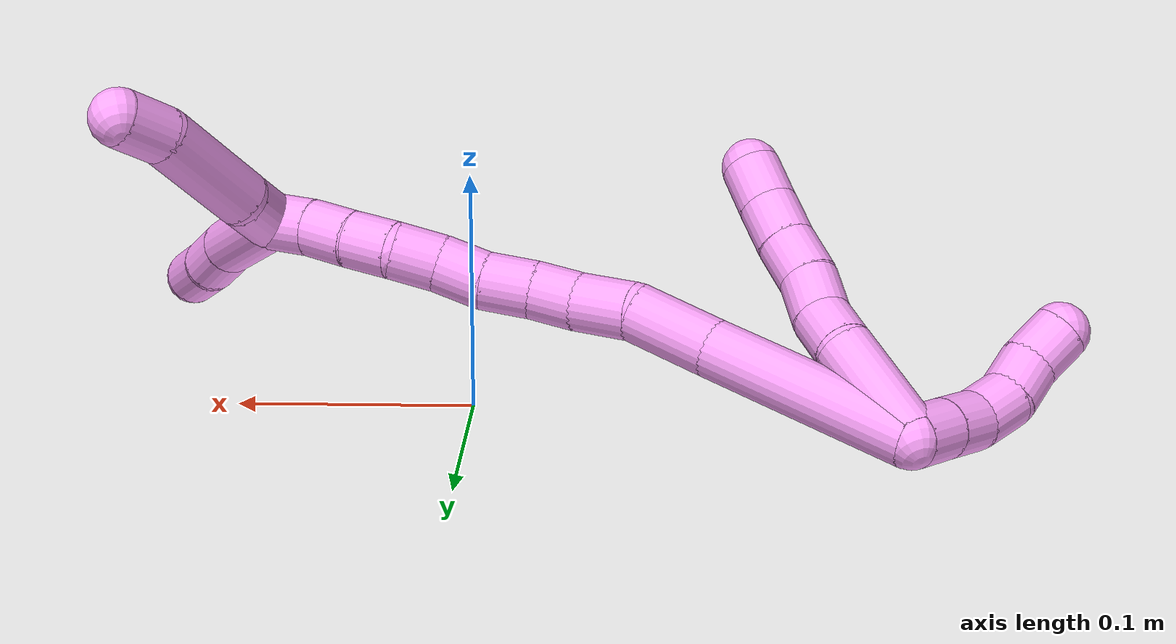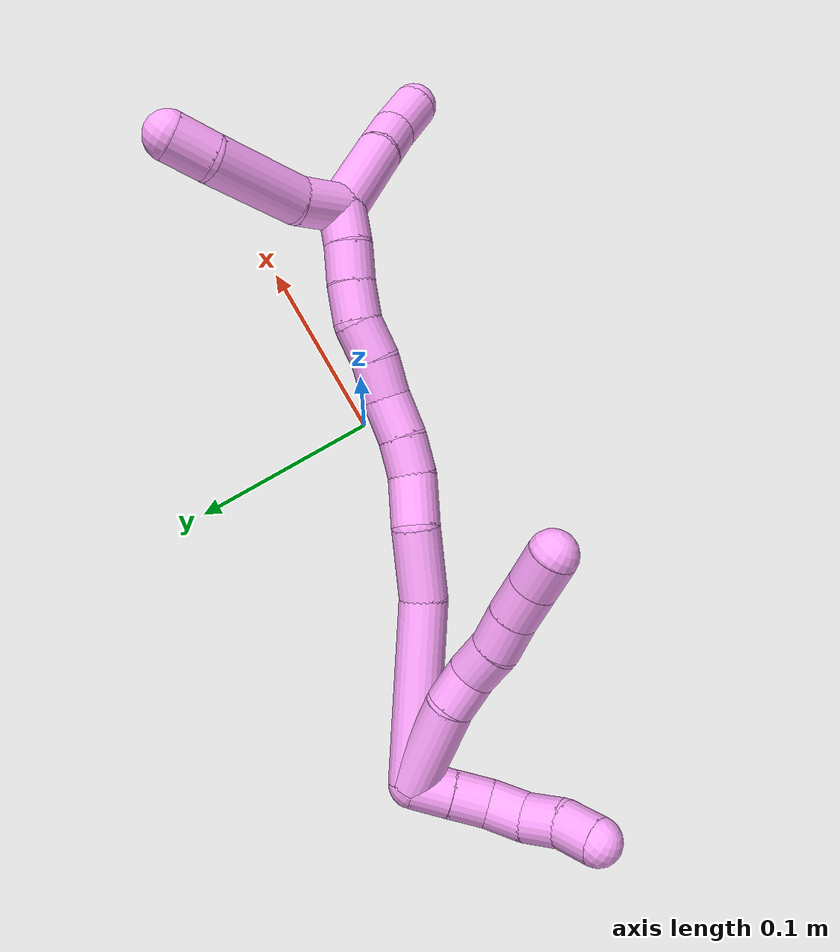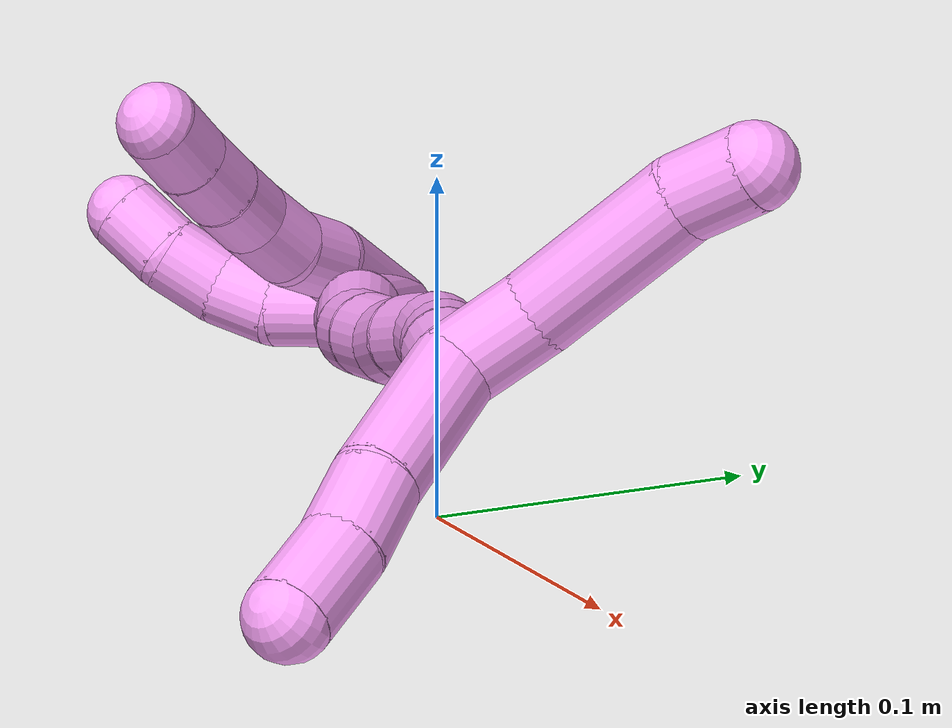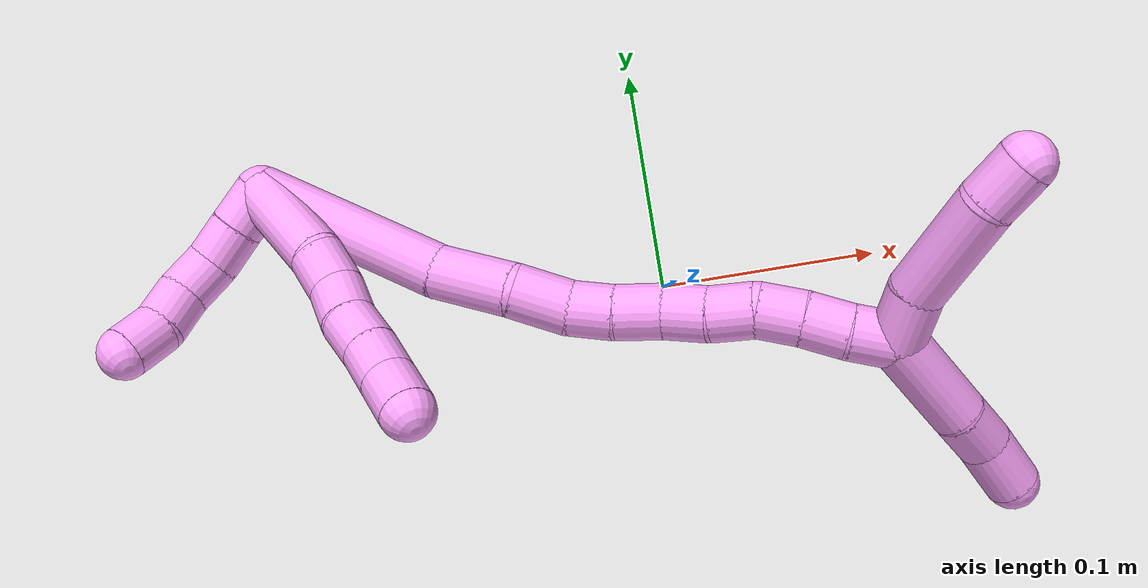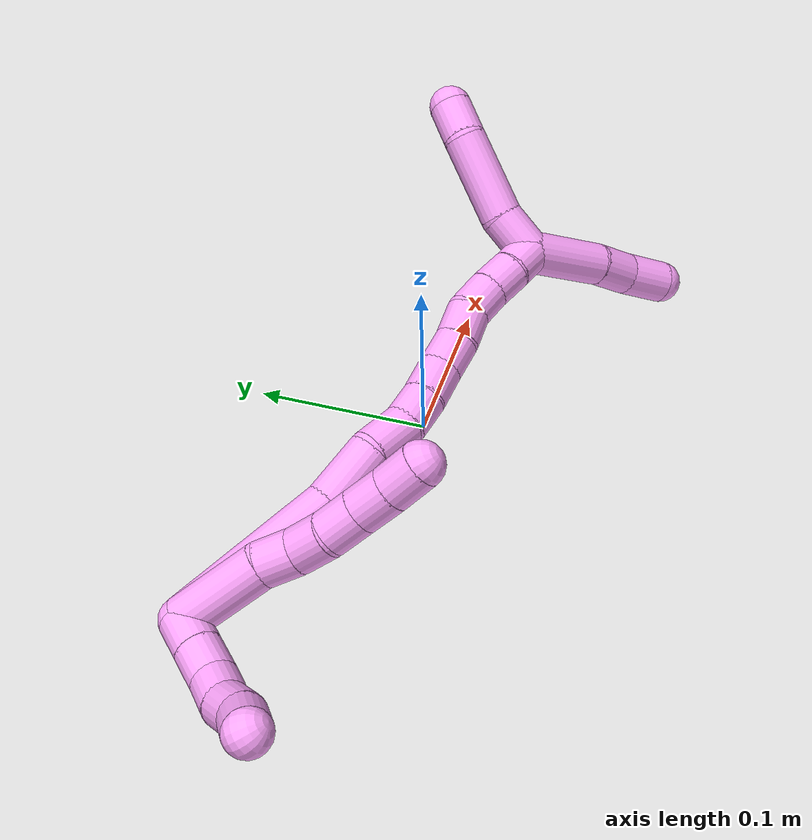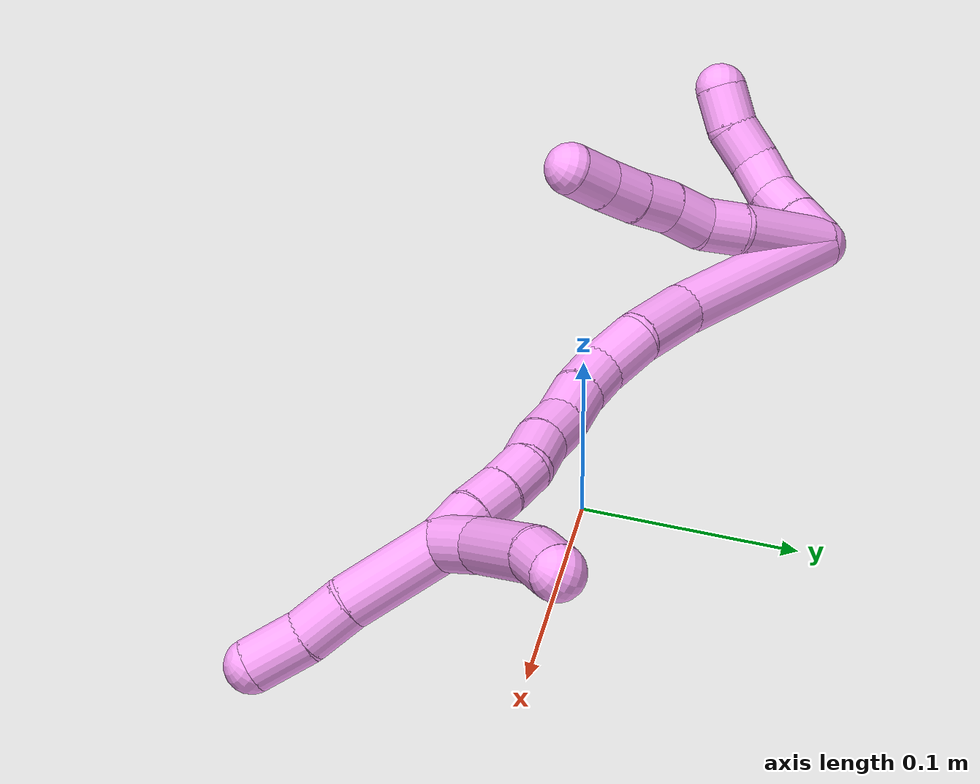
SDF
<sdf version="1.7">
 <world name="default">
  <model name="photoneo_s_sensor">
   <static>1</static>
   <pose>0 0 2 1.57079 1.57079 3.14159</pose>
   <link name="link">
    <inertial><mass>0.1</mass></inertial>
    <sensor name="sensor" type="depth">
     <update_rate>30</update_rate>
     <camera>
      <horizontal_fov>1.22</horizontal_fov>
      <image><width>1920</width><height>1200</height><format>B8G8R8</format></image>
      <clip><near>0.1</near><far>4</far></clip>
      <depth_camera><output>points</output></depth_camera>
     </camera>
     <plugin name="camera_plugin" filename="libgazebo_ros_depth_camera.so">
      <baseline>0.2</baseline>
      <alwaysOn>1</alwaysOn>
      <updateRate>0.0</updateRate>
      <cameraName>camera_ir</cameraName>
      <imageTopicName>/camera/color/image_raw</imageTopicName>
      <cameraInfoTopicName>/camera/color/camera_info</cameraInfoTopicName>
      <depthImageTopicName>/camera/depth/image_raw</depthImageTopicName>
      <depthImageCameraInfoTopicName>/camera/depth/camera_info</depthImageCameraInfoTopicName>
      <pointCloudTopicName>/camera/depth/points</pointCloudTopicName>
      <frameName>fr_optical</frameName>
      <pointCloudCutoff>0.1</pointCloudCutoff>
      <pointCloudCutoffMax>2.0</pointCloudCutoffMax>
      <distortionK1>0</distortionK1>
      <distortionK2>0</distortionK2>
      <distortionK3>0</distortionK3>
      <distortionT1>0</distortionT1>
      <distortionT2>0</distortionT2>
      <CxPrime>0</CxPrime>
      <Cx>0</Cx>
      <Cy>0</Cy>
      <focalLength>0</focalLength>
      <hackBaseline>0</hackBaseline>
     </plugin>
    </sensor>
   </link>
  </model>
  <model name="bin">
   <static>1</static>
   <link name="bottom">
    <collision name="collision-bottom">
     <pose>0 0 -0.01 0 -0 0</pose>
     <geometry><box><size>0.8 0.6 0.02</size></box></geometry>
     <surface>
      <friction><ode><mu>100</mu><mu2>100</mu2></ode></friction>
      <contact><collide_bitmask>65535</collide_bitmask></contact>
     </surface>
    </collision>
   </link>
   <link name="west_wall">
    <collision name="collision-west_wall">
     <pose>-0.41 0 0.1 0 -0 0</pose>
     <geometry><box><size>0.02 0.6 0.2</size></box></geometry>
     <surface>
      <friction><ode><mu>100</mu><mu2>100</mu2></ode></friction>
      <contact><collide_bitmask>65535</collide_bitmask></contact>
     </surface>
    </collision>
   </link>
   <link name="east_wall">
    <collision name="collision-east_wall">
     <pose>0.41 0 0.1 0 -0 0</pose>
     <geometry><box><size>0.02 0.6 0.2</size></box></geometry>
     <surface>
      <friction><ode><mu>100</mu><mu2>100</mu2></ode></friction>
      <contact><collide_bitmask>65535</collide_bitmask></contact>
     </surface>
    </collision>
   </link>
   <link name="south_wall">
    <collision name="collision-south_wall">
     <pose>0 -0.31 0.1 0 -0 0</pose>
     <geometry><box><size>0.8 0.02 0.2</size></box></geometry>
     <surface>
      <friction><ode><mu>100</mu><mu2>100</mu2></ode></friction>
      <contact><collide_bitmask>65535</collide_bitmask></contact>
     </surface>
    </collision>
   </link>
   <link name="north_wall">
    <collision name="collision-north_wall">
     <pose>0 0.31 0.1 0 -0 0</pose>
     <geometry><box><size>0.8 0.02 0.2</size></box></geometry>
     <surface>
      <friction><ode><mu>100</mu><mu2>100</mu2></ode></friction>
      <contact><collide_bitmask>65535</collide_bitmask></contact>
     </surface>
    </collision>
   </link>
  </model>
  <model name="4">
   <static>0</static>
   <link name="4">
    <collision name="collision-cylinder-e_1_2_8">
     <pose>0.003795 -0.003594 0.024267 0.147026 0.153475 0.011325</pose>
     <geometry><cylinder><radius>0.0125</radius><length>0.049647</length></cylinder></geometry>
     <surface>
      <friction><ode><mu>1.16</mu><mu2>1.16</mu2><slip1>0</slip1><slip2>0</slip2></ode></friction>
      <contact><ode><kp>1e+06</kp><kd>1</kd><max_vel>0</max_vel><min_depth>0.001</min_depth></ode></contact>
     </surface>
    </collision>
    <visual name="visual-cylinder-e_1_2_8">
     <pose>0.003795 -0.003594 0.024267 0.147026 0.153475 0.011325</pose>
     <geometry><cylinder><radius>0.0125</radius><length>0.049647</length></cylinder></geometry>
     <material><ambient>1 0.65098 0.996078 1</ambient></material>
    </visual>
    <collision name="collision-cylinder-e_2_8_9">
     <pose>0.007009 -0.009481 0.058251 0.231728 -0.058126 -0.006767</pose>
     <geometry><cylinder><radius>0.0125</radius><length>0.020002</length></cylinder></geometry>
     <surface>
      <friction><ode><mu>1.16</mu><mu2>1.16</mu2><slip1>0</slip1><slip2>0</slip2></ode></friction>
      <contact><ode><kp>1e+06</kp><kd>1</kd><max_vel>0</max_vel><min_depth>0.001</min_depth></ode></contact>
     </surface>
    </collision>
    <visual name="visual-cylinder-e_2_8_9">
     <pose>0.007009 -0.009481 0.058251 0.231728 -0.058126 -0.006767</pose>
     <geometry><cylinder><radius>0.0125</radius><length>0.020002</length></cylinder></geometry>
     <material><ambient>1 0.65098 0.996078 1</ambient></material>
    </visual>
    <collision name="collision-cylinder-e_3_9_10">
     <pose>0.006213 -0.011137 0.078008 -0.063282 -0.021365 0.000676</pose>
     <geometry><cylinder><radius>0.0125</radius><length>0.020124</length></cylinder></geometry>
     <surface>
      <friction><ode><mu>1.16</mu><mu2>1.16</mu2><slip1>0</slip1><slip2>0</slip2></ode></friction>
      <contact><ode><kp>1e+06</kp><kd>1</kd><max_vel>0</max_vel><min_depth>0.001</min_depth></ode></contact>
     </surface>
    </collision>
    <visual name="visual-cylinder-e_3_9_10">
     <pose>0.006213 -0.011137 0.078008 -0.063282 -0.021365 0.000676</pose>
     <geometry><cylinder><radius>0.0125</radius><length>0.020124</length></cylinder></geometry>
     <material><ambient>1 0.65098 0.996078 1</ambient></material>
    </visual>
    <collision name="collision-cylinder-e_4_10_11">
     <pose>0.007402 -0.011066 0.09796 0.05696 0.140529 0.00401</pose>
     <geometry><cylinder><radius>0.0125</radius><length>0.020055</length></cylinder></geometry>
     <surface>
      <friction><ode><mu>1.16</mu><mu2>1.16</mu2><slip1>0</slip1><slip2>0</slip2></ode></friction>
      <contact><ode><kp>1e+06</kp><kd>1</kd><max_vel>0</max_vel><min_depth>0.001</min_depth></ode></contact>
     </surface>
    </collision>
    <visual name="visual-cylinder-e_4_10_11">
     <pose>0.007402 -0.011066 0.09796 0.05696 0.140529 0.00401</pose>
     <geometry><cylinder><radius>0.0125</radius><length>0.020055</length></cylinder></geometry>
     <material><ambient>1 0.65098 0.996078 1</ambient></material>
    </visual>
    <collision name="collision-cylinder-e_5_11_12">
     <pose>0.00988 -0.011447 0.117817 -0.018569 0.107512 -0.000999</pose>
     <geometry><cylinder><radius>0.0125</radius><length>0.02001</length></cylinder></geometry>
     <surface>
      <friction><ode><mu>1.16</mu><mu2>1.16</mu2><slip1>0</slip1><slip2>0</slip2></ode></friction>
      <contact><ode><kp>1e+06</kp><kd>1</kd><max_vel>0</max_vel><min_depth>0.001</min_depth></ode></contact>
     </surface>
    </collision>
    <visual name="visual-cylinder-e_5_11_12">
     <pose>0.00988 -0.011447 0.117817 -0.018569 0.107512 -0.000999</pose>
     <geometry><cylinder><radius>0.0125</radius><length>0.02001</length></cylinder></geometry>
     <material><ambient>1 0.65098 0.996078 1</ambient></material>
    </visual>
    <collision name="collision-cylinder-e_6_12_6">
     <pose>0.012323 -0.01064 0.137732 -0.062319 0.136216 -0.004252</pose>
     <geometry><cylinder><radius>0.0125</radius><length>0.020163</length></cylinder></geometry>
     <surface>
      <friction><ode><mu>1.16</mu><mu2>1.16</mu2><slip1>0</slip1><slip2>0</slip2></ode></friction>
      <contact><ode><kp>1e+06</kp><kd>1</kd><max_vel>0</max_vel><min_depth>0.001</min_depth></ode></contact>
     </surface>
    </collision>
    <visual name="visual-cylinder-e_6_12_6">
     <pose>0.012323 -0.01064 0.137732 -0.062319 0.136216 -0.004252</pose>
     <geometry><cylinder><radius>0.0125</radius><length>0.020163</length></cylinder></geometry>
     <material><ambient>1 0.65098 0.996078 1</ambient></material>
    </visual>
    <collision name="collision-cylinder-e_1_2_13">
     <pose>-0.009305 0.001991 0.003075 -0.574721 -1.19571 0.397217</pose>
     <geometry><cylinder><radius>0.0125</radius><length>0.02</length></cylinder></geometry>
     <surface>
      <friction><ode><mu>1.16</mu><mu2>1.16</mu2><slip1>0</slip1><slip2>0</slip2></ode></friction>
      <contact><ode><kp>1e+06</kp><kd>1</kd><max_vel>0</max_vel><min_depth>0.001</min_depth></ode></contact>
     </surface>
    </collision>
    <visual name="visual-cylinder-e_1_2_13">
     <pose>-0.009305 0.001991 0.003075 -0.574721 -1.19571 0.397217</pose>
     <geometry><cylinder><radius>0.0125</radius><length>0.02</length></cylinder></geometry>
     <material><ambient>1 0.65098 0.996078 1</ambient></material>
    </visual>
    <collision name="collision-cylinder-e_2_13_14">
     <pose>-0.027975 0.005755 0.009174 -0.530002 -1.21269 0.372052</pose>
     <geometry><cylinder><radius>0.0125</radius><length>0.02</length></cylinder></geometry>
     <surface>
      <friction><ode><mu>1.16</mu><mu2>1.16</mu2><slip1>0</slip1><slip2>0</slip2></ode></friction>
      <contact><ode><kp>1e+06</kp><kd>1</kd><max_vel>0</max_vel><min_depth>0.001</min_depth></ode></contact>
     </surface>
    </collision>
    <visual name="visual-cylinder-e_2_13_14">
     <pose>-0.027975 0.005755 0.009174 -0.530002 -1.21269 0.372052</pose>
     <geometry><cylinder><radius>0.0125</radius><length>0.02</length></cylinder></geometry>
     <material><ambient>1 0.65098 0.996078 1</ambient></material>
    </visual>
    <collision name="collision-cylinder-e_3_14_15">
     <pose>-0.045239 0.01211 0.016274 -0.843923 -0.910489 0.432658</pose>
     <geometry><cylinder><radius>0.0125</radius><length>0.02</length></cylinder></geometry>
     <surface>
      <friction><ode><mu>1.16</mu><mu2>1.16</mu2><slip1>0</slip1><slip2>0</slip2></ode></friction>
      <contact><ode><kp>1e+06</kp><kd>1</kd><max_vel>0</max_vel><min_depth>0.001</min_depth></ode></contact>
     </surface>
    </collision>
    <visual name="visual-cylinder-e_3_14_15">
     <pose>-0.045239 0.01211 0.016274 -0.843923 -0.910489 0.432658</pose>
     <geometry><cylinder><radius>0.0125</radius><length>0.02</length></cylinder></geometry>
     <material><ambient>1 0.65098 0.996078 1</ambient></material>
    </visual>
    <collision name="collision-cylinder-e_4_15_16">
     <pose>-0.058795 0.021559 0.027007 -0.631199 -0.601363 0.201805</pose>
     <geometry><cylinder><radius>0.0125</radius><length>0.02</length></cylinder></geometry>
     <surface>
      <friction><ode><mu>1.16</mu><mu2>1.16</mu2><slip1>0</slip1><slip2>0</slip2></ode></friction>
      <contact><ode><kp>1e+06</kp><kd>1</kd><max_vel>0</max_vel><min_depth>0.001</min_depth></ode></contact>
     </surface>
    </collision>
    <visual name="visual-cylinder-e_4_15_16">
     <pose>-0.058795 0.021559 0.027007 -0.631199 -0.601363 0.201805</pose>
     <geometry><cylinder><radius>0.0125</radius><length>0.02</length></cylinder></geometry>
     <material><ambient>1 0.65098 0.996078 1</ambient></material>
    </visual>
    <collision name="collision-cylinder-e_5_16_5">
     <pose>-0.069801 0.033489 0.038299 -0.990097 -0.564394 0.310546</pose>
     <geometry><cylinder><radius>0.0125</radius><length>0.02</length></cylinder></geometry>
     <surface>
      <friction><ode><mu>1.16</mu><mu2>1.16</mu2><slip1>0</slip1><slip2>0</slip2></ode></friction>
      <contact><ode><kp>1e+06</kp><kd>1</kd><max_vel>0</max_vel><min_depth>0.001</min_depth></ode></contact>
     </surface>
    </collision>
    <visual name="visual-cylinder-e_5_16_5">
     <pose>-0.069801 0.033489 0.038299 -0.990097 -0.564394 0.310546</pose>
     <geometry><cylinder><radius>0.0125</radius><length>0.02</length></cylinder></geometry>
     <material><ambient>1 0.65098 0.996078 1</ambient></material>
    </visual>
    <collision name="collision-cylinder-e_1_2_17">
     <pose>0.016939 -0.024241 0.036471 0.586617 0.36907 0.11263</pose>
     <geometry><cylinder><radius>0.0125</radius><length>0.093909</length></cylinder></geometry>
     <surface>
      <friction><ode><mu>1.16</mu><mu2>1.16</mu2><slip1>0</slip1><slip2>0</slip2></ode></friction>
      <contact><ode><kp>1e+06</kp><kd>1</kd><max_vel>0</max_vel><min_depth>0.001</min_depth></ode></contact>
     </surface>
    </collision>
    <visual name="visual-cylinder-e_1_2_17">
     <pose>0.016939 -0.024241 0.036471 0.586617 0.36907 0.11263</pose>
     <geometry><cylinder><radius>0.0125</radius><length>0.093909</length></cylinder></geometry>
     <material><ambient>1 0.65098 0.996078 1</ambient></material>
    </visual>
    <collision name="collision-cylinder-e_2_17_18">
     <pose>0.043622 -0.056596 0.08628 0.54654 0.558037 0.160253</pose>
     <geometry><cylinder><radius>0.0125</radius><length>0.036807</length></cylinder></geometry>
     <surface>
      <friction><ode><mu>1.16</mu><mu2>1.16</mu2><slip1>0</slip1><slip2>0</slip2></ode></friction>
      <contact><ode><kp>1e+06</kp><kd>1</kd><max_vel>0</max_vel><min_depth>0.001</min_depth></ode></contact>
     </surface>
    </collision>
    <visual name="visual-cylinder-e_2_17_18">
     <pose>0.043622 -0.056596 0.08628 0.54654 0.558037 0.160253</pose>
     <geometry><cylinder><radius>0.0125</radius><length>0.036807</length></cylinder></geometry>
     <material><ambient>1 0.65098 0.996078 1</ambient></material>
    </visual>
    <collision name="collision-cylinder-e_3_18_19">
     <pose>0.05859 -0.073626 0.107816 0.827298 0.407051 0.180701</pose>
     <geometry><cylinder><radius>0.0125</radius><length>0.026381</length></cylinder></geometry>
     <surface>
      <friction><ode><mu>1.16</mu><mu2>1.16</mu2><slip1>0</slip1><slip2>0</slip2></ode></friction>
      <contact><ode><kp>1e+06</kp><kd>1</kd><max_vel>0</max_vel><min_depth>0.001</min_depth></ode></contact>
     </surface>
    </collision>
    <visual name="visual-cylinder-e_3_18_19">
     <pose>0.05859 -0.073626 0.107816 0.827298 0.407051 0.180701</pose>
     <geometry><cylinder><radius>0.0125</radius><length>0.026381</length></cylinder></geometry>
     <material><ambient>1 0.65098 0.996078 1</ambient></material>
    </visual>
    <collision name="collision-cylinder-e_4_19_20">
     <pose>0.069878 -0.087997 0.121837 0.752779 0.650125 0.264841</pose>
     <geometry><cylinder><radius>0.0125</radius><length>0.020046</length></cylinder></geometry>
     <surface>
      <friction><ode><mu>1.16</mu><mu2>1.16</mu2><slip1>0</slip1><slip2>0</slip2></ode></friction>
      <contact><ode><kp>1e+06</kp><kd>1</kd><max_vel>0</max_vel><min_depth>0.001</min_depth></ode></contact>
     </surface>
    </collision>
    <visual name="visual-cylinder-e_4_19_20">
     <pose>0.069878 -0.087997 0.121837 0.752779 0.650125 0.264841</pose>
     <geometry><cylinder><radius>0.0125</radius><length>0.020046</length></cylinder></geometry>
     <material><ambient>1 0.65098 0.996078 1</ambient></material>
    </visual>
    <collision name="collision-cylinder-e_5_20_21">
     <pose>0.083456 -0.099495 0.132882 0.858169 0.754662 0.358747</pose>
     <geometry><cylinder><radius>0.0125</radius><length>0.021928</length></cylinder></geometry>
     <surface>
      <friction><ode><mu>1.16</mu><mu2>1.16</mu2><slip1>0</slip1><slip2>0</slip2></ode></friction>
      <contact><ode><kp>1e+06</kp><kd>1</kd><max_vel>0</max_vel><min_depth>0.001</min_depth></ode></contact>
     </surface>
    </collision>
    <visual name="visual-cylinder-e_5_20_21">
     <pose>0.083456 -0.099495 0.132882 0.858169 0.754662 0.358747</pose>
     <geometry><cylinder><radius>0.0125</radius><length>0.021928</length></cylinder></geometry>
     <material><ambient>1 0.65098 0.996078 1</ambient></material>
    </visual>
    <collision name="collision-cylinder-e_6_21_22">
     <pose>0.097574 -0.109859 0.144312 0.607966 0.71805 0.234382</pose>
     <geometry><cylinder><radius>0.0125</radius><length>0.020085</length></cylinder></geometry>
     <surface>
      <friction><ode><mu>1.16</mu><mu2>1.16</mu2><slip1>0</slip1><slip2>0</slip2></ode></friction>
      <contact><ode><kp>1e+06</kp><kd>1</kd><max_vel>0</max_vel><min_depth>0.001</min_depth></ode></contact>
     </surface>
    </collision>
    <visual name="visual-cylinder-e_6_21_22">
     <pose>0.097574 -0.109859 0.144312 0.607966 0.71805 0.234382</pose>
     <geometry><cylinder><radius>0.0125</radius><length>0.020085</length></cylinder></geometry>
     <material><ambient>1 0.65098 0.996078 1</ambient></material>
    </visual>
    <collision name="collision-cylinder-e_7_22_23">
     <pose>0.11197 -0.118655 0.155489 0.733247 0.861321 0.349227</pose>
     <geometry><cylinder><radius>0.0125</radius><length>0.020532</length></cylinder></geometry>
     <surface>
      <friction><ode><mu>1.16</mu><mu2>1.16</mu2><slip1>0</slip1><slip2>0</slip2></ode></friction>
      <contact><ode><kp>1e+06</kp><kd>1</kd><max_vel>0</max_vel><min_depth>0.001</min_depth></ode></contact>
     </surface>
    </collision>
    <visual name="visual-cylinder-e_7_22_23">
     <pose>0.11197 -0.118655 0.155489 0.733247 0.861321 0.349227</pose>
     <geometry><cylinder><radius>0.0125</radius><length>0.020532</length></cylinder></geometry>
     <material><ambient>1 0.65098 0.996078 1</ambient></material>
    </visual>
    <collision name="collision-cylinder-e_8_23_24">
     <pose>0.125092 -0.129005 0.16671 0.754225 0.556208 0.225201</pose>
     <geometry><cylinder><radius>0.0125</radius><length>0.020203</length></cylinder></geometry>
     <surface>
      <friction><ode><mu>1.16</mu><mu2>1.16</mu2><slip1>0</slip1><slip2>0</slip2></ode></friction>
      <contact><ode><kp>1e+06</kp><kd>1</kd><max_vel>0</max_vel><min_depth>0.001</min_depth></ode></contact>
     </surface>
    </collision>
    <visual name="visual-cylinder-e_8_23_24">
     <pose>0.125092 -0.129005 0.16671 0.754225 0.556208 0.225201</pose>
     <geometry><cylinder><radius>0.0125</radius><length>0.020203</length></cylinder></geometry>
     <material><ambient>1 0.65098 0.996078 1</ambient></material>
    </visual>
    <collision name="collision-cylinder-e_9_24_25">
     <pose>0.134945 -0.140807 0.179688 0.722484 0.466976 0.17923</pose>
     <geometry><cylinder><radius>0.0125</radius><length>0.02008</length></cylinder></geometry>
     <surface>
      <friction><ode><mu>1.16</mu><mu2>1.16</mu2><slip1>0</slip1><slip2>0</slip2></ode></friction>
      <contact><ode><kp>1e+06</kp><kd>1</kd><max_vel>0</max_vel><min_depth>0.001</min_depth></ode></contact>
     </surface>
    </collision>
    <visual name="visual-cylinder-e_9_24_25">
     <pose>0.134945 -0.140807 0.179688 0.722484 0.466976 0.17923</pose>
     <geometry><cylinder><radius>0.0125</radius><length>0.02008</length></cylinder></geometry>
     <material><ambient>1 0.65098 0.996078 1</ambient></material>
    </visual>
    <collision name="collision-cylinder-e_10_25_1">
     <pose>0.144445 -0.153275 0.192133 0.852153 0.520422 0.240523</pose>
     <geometry><cylinder><radius>0.0125</radius><length>0.02003</length></cylinder></geometry>
     <surface>
      <friction><ode><mu>1.16</mu><mu2>1.16</mu2><slip1>0</slip1><slip2>0</slip2></ode></friction>
      <contact><ode><kp>1e+06</kp><kd>1</kd><max_vel>0</max_vel><min_depth>0.001</min_depth></ode></contact>
     </surface>
    </collision>
    <visual name="visual-cylinder-e_10_25_1">
     <pose>0.144445 -0.153275 0.192133 0.852153 0.520422 0.240523</pose>
     <geometry><cylinder><radius>0.0125</radius><length>0.02003</length></cylinder></geometry>
     <material><ambient>1 0.65098 0.996078 1</ambient></material>
    </visual>
    <collision name="collision-cylinder-e_1_1_26">
     <pose>0.161227 -0.154243 0.195852 -1.91565 1.10584 -1.44038</pose>
     <geometry><cylinder><radius>0.0125</radius><length>0.026409</length></cylinder></geometry>
     <surface>
      <friction><ode><mu>1.16</mu><mu2>1.16</mu2><slip1>0</slip1><slip2>0</slip2></ode></friction>
      <contact><ode><kp>1e+06</kp><kd>1</kd><max_vel>0</max_vel><min_depth>0.001</min_depth></ode></contact>
     </surface>
    </collision>
    <visual name="visual-cylinder-e_1_1_26">
     <pose>0.161227 -0.154243 0.195852 -1.91565 1.10584 -1.44038</pose>
     <geometry><cylinder><radius>0.0125</radius><length>0.026409</length></cylinder></geometry>
     <material><ambient>1 0.65098 0.996078 1</ambient></material>
    </visual>
    <collision name="collision-cylinder-e_2_26_27">
     <pose>0.197308 -0.140255 0.195829 -1.34 1.22868 -1.01923</pose>
     <geometry><cylinder><radius>0.0125</radius><length>0.051543</length></cylinder></geometry>
     <surface>
      <friction><ode><mu>1.16</mu><mu2>1.16</mu2><slip1>0</slip1><slip2>0</slip2></ode></friction>
      <contact><ode><kp>1e+06</kp><kd>1</kd><max_vel>0</max_vel><min_depth>0.001</min_depth></ode></contact>
     </surface>
    </collision>
    <visual name="visual-cylinder-e_2_26_27">
     <pose>0.197308 -0.140255 0.195829 -1.34 1.22868 -1.01923</pose>
     <geometry><cylinder><radius>0.0125</radius><length>0.051543</length></cylinder></geometry>
     <material><ambient>1 0.65098 0.996078 1</ambient></material>
    </visual>
    <collision name="collision-cylinder-e_3_27_4">
     <pose>0.232572 -0.130955 0.198037 -1.31538 1.48791 -1.23601</pose>
     <geometry><cylinder><radius>0.0125</radius><length>0.022048</length></cylinder></geometry>
     <surface>
      <friction><ode><mu>1.16</mu><mu2>1.16</mu2><slip1>0</slip1><slip2>0</slip2></ode></friction>
      <contact><ode><kp>1e+06</kp><kd>1</kd><max_vel>0</max_vel><min_depth>0.001</min_depth></ode></contact>
     </surface>
    </collision>
    <visual name="visual-cylinder-e_3_27_4">
     <pose>0.232572 -0.130955 0.198037 -1.31538 1.48791 -1.23601</pose>
     <geometry><cylinder><radius>0.0125</radius><length>0.022048</length></cylinder></geometry>
     <material><ambient>1 0.65098 0.996078 1</ambient></material>
    </visual>
    <collision name="collision-cylinder-e_1_1_28">
     <pose>0.144194 -0.180681 0.209406 1.06515 -0.215912 -0.127577</pose>
     <geometry><cylinder><radius>0.0125</radius><length>0.048835</length></cylinder></geometry>
     <surface>
      <friction><ode><mu>1.16</mu><mu2>1.16</mu2><slip1>0</slip1><slip2>0</slip2></ode></friction>
      <contact><ode><kp>1e+06</kp><kd>1</kd><max_vel>0</max_vel><min_depth>0.001</min_depth></ode></contact>
     </surface>
    </collision>
    <visual name="visual-cylinder-e_1_1_28">
     <pose>0.144194 -0.180681 0.209406 1.06515 -0.215912 -0.127577</pose>
     <geometry><cylinder><radius>0.0125</radius><length>0.048835</length></cylinder></geometry>
     <material><ambient>1 0.65098 0.996078 1</ambient></material>
    </visual>
    <collision name="collision-cylinder-e_2_28_29">
     <pose>0.136207 -0.212394 0.225081 1.20763 -0.233141 -0.161192</pose>
     <geometry><cylinder><radius>0.0125</radius><length>0.023853</length></cylinder></geometry>
     <surface>
      <friction><ode><mu>1.16</mu><mu2>1.16</mu2><slip1>0</slip1><slip2>0</slip2></ode></friction>
      <contact><ode><kp>1e+06</kp><kd>1</kd><max_vel>0</max_vel><min_depth>0.001</min_depth></ode></contact>
     </surface>
    </collision>
    <visual name="visual-cylinder-e_2_28_29">
     <pose>0.136207 -0.212394 0.225081 1.20763 -0.233141 -0.161192</pose>
     <geometry><cylinder><radius>0.0125</radius><length>0.023853</length></cylinder></geometry>
     <material><ambient>1 0.65098 0.996078 1</ambient></material>
    </visual>
    <collision name="collision-cylinder-e_3_29_3">
     <pose>0.12961 -0.234603 0.235733 1.04917 -0.285179 -0.16577</pose>
     <geometry><cylinder><radius>0.0125</radius><length>0.027312</length></cylinder></geometry>
     <surface>
      <friction><ode><mu>1.16</mu><mu2>1.16</mu2><slip1>0</slip1><slip2>0</slip2></ode></friction>
      <contact><ode><kp>1e+06</kp><kd>1</kd><max_vel>0</max_vel><min_depth>0.001</min_depth></ode></contact>
     </surface>
    </collision>
    <visual name="visual-cylinder-e_3_29_3">
     <pose>0.12961 -0.234603 0.235733 1.04917 -0.285179 -0.16577</pose>
     <geometry><cylinder><radius>0.0125</radius><length>0.027312</length></cylinder></geometry>
     <material><ambient>1 0.65098 0.996078 1</ambient></material>
    </visual>
    <collision name="collision-sphere-3">
     <pose>0.125768 -0.245965 0.242263 0 -0 0</pose>
     <geometry><sphere><radius>0.0125</radius></sphere></geometry>
     <surface>
      <friction><ode><mu>1.16</mu><mu2>1.16</mu2><slip1>0</slip1><slip2>0</slip2></ode></friction>
      <contact><ode><kp>1e+06</kp><kd>1</kd><max_vel>0</max_vel><min_depth>0.001</min_depth></ode></contact>
     </surface>
    </collision>
    <visual name="visual-sphere-3">
     <pose>0.125768 -0.245965 0.242263 0 -0 0</pose>
     <geometry><sphere><radius>0.0125</radius></sphere></geometry>
     <material><ambient>1 0.65098 0.996078 1</ambient></material>
    </visual>
    <collision name="collision-sphere-29">
     <pose>0.133452 -0.223241 0.229203 0 -0 0</pose>
     <geometry><sphere><radius>0.0125</radius></sphere></geometry>
     <surface>
      <friction><ode><mu>1.16</mu><mu2>1.16</mu2><slip1>0</slip1><slip2>0</slip2></ode></friction>
      <contact><ode><kp>1e+06</kp><kd>1</kd><max_vel>0</max_vel><min_depth>0.001</min_depth></ode></contact>
     </surface>
    </collision>
    <visual name="visual-sphere-29">
     <pose>0.133452 -0.223241 0.229203 0 -0 0</pose>
     <geometry><sphere><radius>0.0125</radius></sphere></geometry>
     <material><ambient>1 0.65098 0.996078 1</ambient></material>
    </visual>
    <collision name="collision-sphere-28">
     <pose>0.138963 -0.201547 0.220959 0 -0 0</pose>
     <geometry><sphere><radius>0.0125</radius></sphere></geometry>
     <surface>
      <friction><ode><mu>1.16</mu><mu2>1.16</mu2><slip1>0</slip1><slip2>0</slip2></ode></friction>
      <contact><ode><kp>1e+06</kp><kd>1</kd><max_vel>0</max_vel><min_depth>0.001</min_depth></ode></contact>
     </surface>
    </collision>
    <visual name="visual-sphere-28">
     <pose>0.138963 -0.201547 0.220959 0 -0 0</pose>
     <geometry><sphere><radius>0.0125</radius></sphere></geometry>
     <material><ambient>1 0.65098 0.996078 1</ambient></material>
    </visual>
    <collision name="collision-sphere-4">
     <pose>0.243559 -0.130072 0.198268 0 -0 0</pose>
     <geometry><sphere><radius>0.0125</radius></sphere></geometry>
     <surface>
      <friction><ode><mu>1.16</mu><mu2>1.16</mu2><slip1>0</slip1><slip2>0</slip2></ode></friction>
      <contact><ode><kp>1e+06</kp><kd>1</kd><max_vel>0</max_vel><min_depth>0.001</min_depth></ode></contact>
     </surface>
    </collision>
    <visual name="visual-sphere-4">
     <pose>0.243559 -0.130072 0.198268 0 -0 0</pose>
     <geometry><sphere><radius>0.0125</radius></sphere></geometry>
     <material><ambient>1 0.65098 0.996078 1</ambient></material>
    </visual>
    <collision name="collision-sphere-27">
     <pose>0.221586 -0.131838 0.197806 0 -0 0</pose>
     <geometry><sphere><radius>0.0125</radius></sphere></geometry>
     <surface>
      <friction><ode><mu>1.16</mu><mu2>1.16</mu2><slip1>0</slip1><slip2>0</slip2></ode></friction>
      <contact><ode><kp>1e+06</kp><kd>1</kd><max_vel>0</max_vel><min_depth>0.001</min_depth></ode></contact>
     </surface>
    </collision>
    <visual name="visual-sphere-27">
     <pose>0.221586 -0.131838 0.197806 0 -0 0</pose>
     <geometry><sphere><radius>0.0125</radius></sphere></geometry>
     <material><ambient>1 0.65098 0.996078 1</ambient></material>
    </visual>
    <collision name="collision-sphere-26">
     <pose>0.17303 -0.148671 0.193851 0 -0 0</pose>
     <geometry><sphere><radius>0.0125</radius></sphere></geometry>
     <surface>
      <friction><ode><mu>1.16</mu><mu2>1.16</mu2><slip1>0</slip1><slip2>0</slip2></ode></friction>
      <contact><ode><kp>1e+06</kp><kd>1</kd><max_vel>0</max_vel><min_depth>0.001</min_depth></ode></contact>
     </surface>
    </collision>
    <visual name="visual-sphere-26">
     <pose>0.17303 -0.148671 0.193851 0 -0 0</pose>
     <geometry><sphere><radius>0.0125</radius></sphere></geometry>
     <material><ambient>1 0.65098 0.996078 1</ambient></material>
    </visual>
    <collision name="collision-sphere-1">
     <pose>0.149425 -0.159815 0.197854 0 -0 0</pose>
     <geometry><sphere><radius>0.0125</radius></sphere></geometry>
     <surface>
      <friction><ode><mu>1.16</mu><mu2>1.16</mu2><slip1>0</slip1><slip2>0</slip2></ode></friction>
      <contact><ode><kp>1e+06</kp><kd>1</kd><max_vel>0</max_vel><min_depth>0.001</min_depth></ode></contact>
     </surface>
    </collision>
    <visual name="visual-sphere-1">
     <pose>0.149425 -0.159815 0.197854 0 -0 0</pose>
     <geometry><sphere><radius>0.0125</radius></sphere></geometry>
     <material><ambient>1 0.65098 0.996078 1</ambient></material>
    </visual>
    <collision name="collision-sphere-25">
     <pose>0.139465 -0.146735 0.186413 0 -0 0</pose>
     <geometry><sphere><radius>0.0125</radius></sphere></geometry>
     <surface>
      <friction><ode><mu>1.16</mu><mu2>1.16</mu2><slip1>0</slip1><slip2>0</slip2></ode></friction>
      <contact><ode><kp>1e+06</kp><kd>1</kd><max_vel>0</max_vel><min_depth>0.001</min_depth></ode></contact>
     </surface>
    </collision>
    <visual name="visual-sphere-25">
     <pose>0.139465 -0.146735 0.186413 0 -0 0</pose>
     <geometry><sphere><radius>0.0125</radius></sphere></geometry>
     <material><ambient>1 0.65098 0.996078 1</ambient></material>
    </visual>
    <collision name="collision-sphere-24">
     <pose>0.130426 -0.134879 0.172962 0 -0 0</pose>
     <geometry><sphere><radius>0.0125</radius></sphere></geometry>
     <surface>
      <friction><ode><mu>1.16</mu><mu2>1.16</mu2><slip1>0</slip1><slip2>0</slip2></ode></friction>
      <contact><ode><kp>1e+06</kp><kd>1</kd><max_vel>0</max_vel><min_depth>0.001</min_depth></ode></contact>
     </surface>
    </collision>
    <visual name="visual-sphere-24">
     <pose>0.130426 -0.134879 0.172962 0 -0 0</pose>
     <geometry><sphere><radius>0.0125</radius></sphere></geometry>
     <material><ambient>1 0.65098 0.996078 1</ambient></material>
    </visual>
    <collision name="collision-sphere-23">
     <pose>0.119759 -0.123131 0.160458 0 -0 0</pose>
     <geometry><sphere><radius>0.0125</radius></sphere></geometry>
     <surface>
      <friction><ode><mu>1.16</mu><mu2>1.16</mu2><slip1>0</slip1><slip2>0</slip2></ode></friction>
      <contact><ode><kp>1e+06</kp><kd>1</kd><max_vel>0</max_vel><min_depth>0.001</min_depth></ode></contact>
     </surface>
    </collision>
    <visual name="visual-sphere-23">
     <pose>0.119759 -0.123131 0.160458 0 -0 0</pose>
     <geometry><sphere><radius>0.0125</radius></sphere></geometry>
     <material><ambient>1 0.65098 0.996078 1</ambient></material>
    </visual>
    <collision name="collision-sphere-22">
     <pose>0.104181 -0.114179 0.15052 0 -0 0</pose>
     <geometry><sphere><radius>0.0125</radius></sphere></geometry>
     <surface>
      <friction><ode><mu>1.16</mu><mu2>1.16</mu2><slip1>0</slip1><slip2>0</slip2></ode></friction>
      <contact><ode><kp>1e+06</kp><kd>1</kd><max_vel>0</max_vel><min_depth>0.001</min_depth></ode></contact>
     </surface>
    </collision>
    <visual name="visual-sphere-22">
     <pose>0.104181 -0.114179 0.15052 0 -0 0</pose>
     <geometry><sphere><radius>0.0125</radius></sphere></geometry>
     <material><ambient>1 0.65098 0.996078 1</ambient></material>
    </visual>
    <collision name="collision-sphere-21">
     <pose>0.090967 -0.105539 0.138104 0 -0 0</pose>
     <geometry><sphere><radius>0.0125</radius></sphere></geometry>
     <surface>
      <friction><ode><mu>1.16</mu><mu2>1.16</mu2><slip1>0</slip1><slip2>0</slip2></ode></friction>
      <contact><ode><kp>1e+06</kp><kd>1</kd><max_vel>0</max_vel><min_depth>0.001</min_depth></ode></contact>
     </surface>
    </collision>
    <visual name="visual-sphere-21">
     <pose>0.090967 -0.105539 0.138104 0 -0 0</pose>
     <geometry><sphere><radius>0.0125</radius></sphere></geometry>
     <material><ambient>1 0.65098 0.996078 1</ambient></material>
    </visual>
    <collision name="collision-sphere-12">
     <pose>0.010954 -0.011262 0.127763 0 -0 0</pose>
     <geometry><sphere><radius>0.0125</radius></sphere></geometry>
     <surface>
      <friction><ode><mu>1.16</mu><mu2>1.16</mu2><slip1>0</slip1><slip2>0</slip2></ode></friction>
      <contact><ode><kp>1e+06</kp><kd>1</kd><max_vel>0</max_vel><min_depth>0.001</min_depth></ode></contact>
     </surface>
    </collision>
    <visual name="visual-sphere-12">
     <pose>0.010954 -0.011262 0.127763 0 -0 0</pose>
     <geometry><sphere><radius>0.0125</radius></sphere></geometry>
     <material><ambient>1 0.65098 0.996078 1</ambient></material>
    </visual>
    <collision name="collision-sphere-11">
     <pose>0.008807 -0.011632 0.107872 0 -0 0</pose>
     <geometry><sphere><radius>0.0125</radius></sphere></geometry>
     <surface>
      <friction><ode><mu>1.16</mu><mu2>1.16</mu2><slip1>0</slip1><slip2>0</slip2></ode></friction>
      <contact><ode><kp>1e+06</kp><kd>1</kd><max_vel>0</max_vel><min_depth>0.001</min_depth></ode></contact>
     </surface>
    </collision>
    <visual name="visual-sphere-11">
     <pose>0.008807 -0.011632 0.107872 0 -0 0</pose>
     <geometry><sphere><radius>0.0125</radius></sphere></geometry>
     <material><ambient>1 0.65098 0.996078 1</ambient></material>
    </visual>
    <collision name="collision-sphere-10">
     <pose>0.005998 -0.010501 0.088047 0 -0 0</pose>
     <geometry><sphere><radius>0.0125</radius></sphere></geometry>
     <surface>
      <friction><ode><mu>1.16</mu><mu2>1.16</mu2><slip1>0</slip1><slip2>0</slip2></ode></friction>
      <contact><ode><kp>1e+06</kp><kd>1</kd><max_vel>0</max_vel><min_depth>0.001</min_depth></ode></contact>
     </surface>
    </collision>
    <visual name="visual-sphere-10">
     <pose>0.005998 -0.010501 0.088047 0 -0 0</pose>
     <geometry><sphere><radius>0.0125</radius></sphere></geometry>
     <material><ambient>1 0.65098 0.996078 1</ambient></material>
    </visual>
    <collision name="collision-sphere-9">
     <pose>0.006428 -0.011773 0.067968 0 -0 0</pose>
     <geometry><sphere><radius>0.0125</radius></sphere></geometry>
     <surface>
      <friction><ode><mu>1.16</mu><mu2>1.16</mu2><slip1>0</slip1><slip2>0</slip2></ode></friction>
      <contact><ode><kp>1e+06</kp><kd>1</kd><max_vel>0</max_vel><min_depth>0.001</min_depth></ode></contact>
     </surface>
    </collision>
    <visual name="visual-sphere-9">
     <pose>0.006428 -0.011773 0.067968 0 -0 0</pose>
     <geometry><sphere><radius>0.0125</radius></sphere></geometry>
     <material><ambient>1 0.65098 0.996078 1</ambient></material>
    </visual>
    <collision name="collision-sphere-2">
     <geometry><sphere><radius>0.0125</radius></sphere></geometry>
     <surface>
      <friction><ode><mu>1.16</mu><mu2>1.16</mu2><slip1>0</slip1><slip2>0</slip2></ode></friction>
      <contact><ode><kp>1e+06</kp><kd>1</kd><max_vel>0</max_vel><min_depth>0.001</min_depth></ode></contact>
     </surface>
    </collision>
    <visual name="visual-sphere-2">
     <geometry><sphere><radius>0.0125</radius></sphere></geometry>
     <material><ambient>1 0.65098 0.996078 1</ambient></material>
    </visual>
    <collision name="collision-sphere-19">
     <pose>0.063812 -0.082542 0.116015 0 -0 0</pose>
     <geometry><sphere><radius>0.0125</radius></sphere></geometry>
     <surface>
      <friction><ode><mu>1.16</mu><mu2>1.16</mu2><slip1>0</slip1><slip2>0</slip2></ode></friction>
      <contact><ode><kp>1e+06</kp><kd>1</kd><max_vel>0</max_vel><min_depth>0.001</min_depth></ode></contact>
     </surface>
    </collision>
    <visual name="visual-sphere-19">
     <pose>0.063812 -0.082542 0.116015 0 -0 0</pose>
     <geometry><sphere><radius>0.0125</radius></sphere></geometry>
     <material><ambient>1 0.65098 0.996078 1</ambient></material>
    </visual>
    <collision name="collision-sphere-8">
     <pose>0.00759 -0.007188 0.048534 0 -0 0</pose>
     <geometry><sphere><radius>0.0125</radius></sphere></geometry>
     <surface>
      <friction><ode><mu>1.16</mu><mu2>1.16</mu2><slip1>0</slip1><slip2>0</slip2></ode></friction>
      <contact><ode><kp>1e+06</kp><kd>1</kd><max_vel>0</max_vel><min_depth>0.001</min_depth></ode></contact>
     </surface>
    </collision>
    <visual name="visual-sphere-8">
     <pose>0.00759 -0.007188 0.048534 0 -0 0</pose>
     <geometry><sphere><radius>0.0125</radius></sphere></geometry>
     <material><ambient>1 0.65098 0.996078 1</ambient></material>
    </visual>
    <collision name="collision-sphere-6">
     <pose>0.013692 -0.010018 0.1477 0 -0 0</pose>
     <geometry><sphere><radius>0.0125</radius></sphere></geometry>
     <surface>
      <friction><ode><mu>1.16</mu><mu2>1.16</mu2><slip1>0</slip1><slip2>0</slip2></ode></friction>
      <contact><ode><kp>1e+06</kp><kd>1</kd><max_vel>0</max_vel><min_depth>0.001</min_depth></ode></contact>
     </surface>
    </collision>
    <visual name="visual-sphere-6">
     <pose>0.013692 -0.010018 0.1477 0 -0 0</pose>
     <geometry><sphere><radius>0.0125</radius></sphere></geometry>
     <material><ambient>1 0.65098 0.996078 1</ambient></material>
    </visual>
    <collision name="collision-sphere-13">
     <pose>-0.01861 0.003983 0.00615 0 -0 0</pose>
     <geometry><sphere><radius>0.0125</radius></sphere></geometry>
     <surface>
      <friction><ode><mu>1.16</mu><mu2>1.16</mu2><slip1>0</slip1><slip2>0</slip2></ode></friction>
      <contact><ode><kp>1e+06</kp><kd>1</kd><max_vel>0</max_vel><min_depth>0.001</min_depth></ode></contact>
     </surface>
    </collision>
    <visual name="visual-sphere-13">
     <pose>-0.01861 0.003983 0.00615 0 -0 0</pose>
     <geometry><sphere><radius>0.0125</radius></sphere></geometry>
     <material><ambient>1 0.65098 0.996078 1</ambient></material>
    </visual>
    <collision name="collision-sphere-14">
     <pose>-0.037341 0.007527 0.012198 0 -0 0</pose>
     <geometry><sphere><radius>0.0125</radius></sphere></geometry>
     <surface>
      <friction><ode><mu>1.16</mu><mu2>1.16</mu2><slip1>0</slip1><slip2>0</slip2></ode></friction>
      <contact><ode><kp>1e+06</kp><kd>1</kd><max_vel>0</max_vel><min_depth>0.001</min_depth></ode></contact>
     </surface>
    </collision>
    <visual name="visual-sphere-14">
     <pose>-0.037341 0.007527 0.012198 0 -0 0</pose>
     <geometry><sphere><radius>0.0125</radius></sphere></geometry>
     <material><ambient>1 0.65098 0.996078 1</ambient></material>
    </visual>
    <collision name="collision-sphere-15">
     <pose>-0.053137 0.016694 0.02035 0 -0 0</pose>
     <geometry><sphere><radius>0.0125</radius></sphere></geometry>
     <surface>
      <friction><ode><mu>1.16</mu><mu2>1.16</mu2><slip1>0</slip1><slip2>0</slip2></ode></friction>
      <contact><ode><kp>1e+06</kp><kd>1</kd><max_vel>0</max_vel><min_depth>0.001</min_depth></ode></contact>
     </surface>
    </collision>
    <visual name="visual-sphere-15">
     <pose>-0.053137 0.016694 0.02035 0 -0 0</pose>
     <geometry><sphere><radius>0.0125</radius></sphere></geometry>
     <material><ambient>1 0.65098 0.996078 1</ambient></material>
    </visual>
    <collision name="collision-sphere-16">
     <pose>-0.064452 0.026425 0.033664 0 -0 0</pose>
     <geometry><sphere><radius>0.0125</radius></sphere></geometry>
     <surface>
      <friction><ode><mu>1.16</mu><mu2>1.16</mu2><slip1>0</slip1><slip2>0</slip2></ode></friction>
      <contact><ode><kp>1e+06</kp><kd>1</kd><max_vel>0</max_vel><min_depth>0.001</min_depth></ode></contact>
     </surface>
    </collision>
    <visual name="visual-sphere-16">
     <pose>-0.064452 0.026425 0.033664 0 -0 0</pose>
     <geometry><sphere><radius>0.0125</radius></sphere></geometry>
     <material><ambient>1 0.65098 0.996078 1</ambient></material>
    </visual>
    <collision name="collision-sphere-5">
     <pose>-0.07515 0.040554 0.042934 0 -0 0</pose>
     <geometry><sphere><radius>0.0125</radius></sphere></geometry>
     <surface>
      <friction><ode><mu>1.16</mu><mu2>1.16</mu2><slip1>0</slip1><slip2>0</slip2></ode></friction>
      <contact><ode><kp>1e+06</kp><kd>1</kd><max_vel>0</max_vel><min_depth>0.001</min_depth></ode></contact>
     </surface>
    </collision>
    <visual name="visual-sphere-5">
     <pose>-0.07515 0.040554 0.042934 0 -0 0</pose>
     <geometry><sphere><radius>0.0125</radius></sphere></geometry>
     <material><ambient>1 0.65098 0.996078 1</ambient></material>
    </visual>
    <collision name="collision-sphere-17">
     <pose>0.033877 -0.048483 0.072943 0 -0 0</pose>
     <geometry><sphere><radius>0.0125</radius></sphere></geometry>
     <surface>
      <friction><ode><mu>1.16</mu><mu2>1.16</mu2><slip1>0</slip1><slip2>0</slip2></ode></friction>
      <contact><ode><kp>1e+06</kp><kd>1</kd><max_vel>0</max_vel><min_depth>0.001</min_depth></ode></contact>
     </surface>
    </collision>
    <visual name="visual-sphere-17">
     <pose>0.033877 -0.048483 0.072943 0 -0 0</pose>
     <geometry><sphere><radius>0.0125</radius></sphere></geometry>
     <material><ambient>1 0.65098 0.996078 1</ambient></material>
    </visual>
    <collision name="collision-sphere-18">
     <pose>0.053368 -0.06471 0.099617 0 -0 0</pose>
     <geometry><sphere><radius>0.0125</radius></sphere></geometry>
     <surface>
      <friction><ode><mu>1.16</mu><mu2>1.16</mu2><slip1>0</slip1><slip2>0</slip2></ode></friction>
      <contact><ode><kp>1e+06</kp><kd>1</kd><max_vel>0</max_vel><min_depth>0.001</min_depth></ode></contact>
     </surface>
    </collision>
    <visual name="visual-sphere-18">
     <pose>0.053368 -0.06471 0.099617 0 -0 0</pose>
     <geometry><sphere><radius>0.0125</radius></sphere></geometry>
     <material><ambient>1 0.65098 0.996078 1</ambient></material>
    </visual>
    <collision name="collision-sphere-20">
     <pose>0.075945 -0.093452 0.12766 0 -0 0</pose>
     <geometry><sphere><radius>0.0125</radius></sphere></geometry>
     <surface>
      <friction><ode><mu>1.16</mu><mu2>1.16</mu2><slip1>0</slip1><slip2>0</slip2></ode></friction>
      <contact><ode><kp>1e+06</kp><kd>1</kd><max_vel>0</max_vel><min_depth>0.001</min_depth></ode></contact>
     </surface>
    </collision>
    <visual name="visual-sphere-20">
     <pose>0.075945 -0.093452 0.12766 0 -0 0</pose>
     <geometry><sphere><radius>0.0125</radius></sphere></geometry>
     <material><ambient>1 0.65098 0.996078 1</ambient></material>
    </visual>
    <inertial>
     <pose>0.067431 -0.076854 0.115064 0 -0 0</pose>
     <mass>0.75</mass>
     <inertia>
      <ixx>0.000142</ixx>
      <ixy>0</ixy>
      <ixz>0</ixz>
      <iyy>0.000117</iyy>
      <iyz>0</iyz>
      <izz>4.2e-05</izz>
     </inertia>
    </inertial>
   </link>
   <pose>-0.177127 0.072624 0.013389 0.897386 -0.400712 0.676117</pose>
  </model>
 </world>
</sdf>
